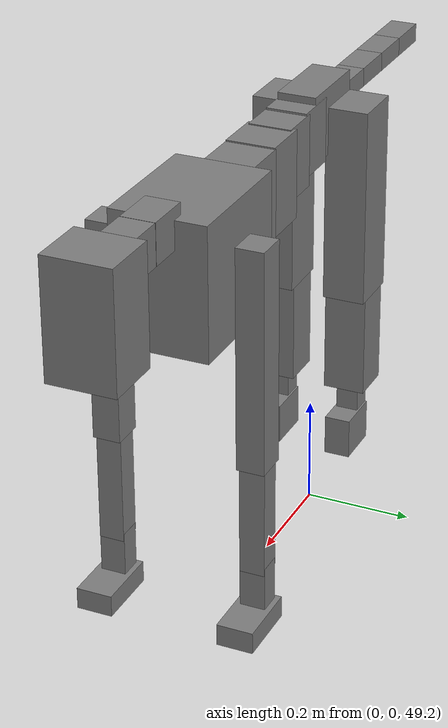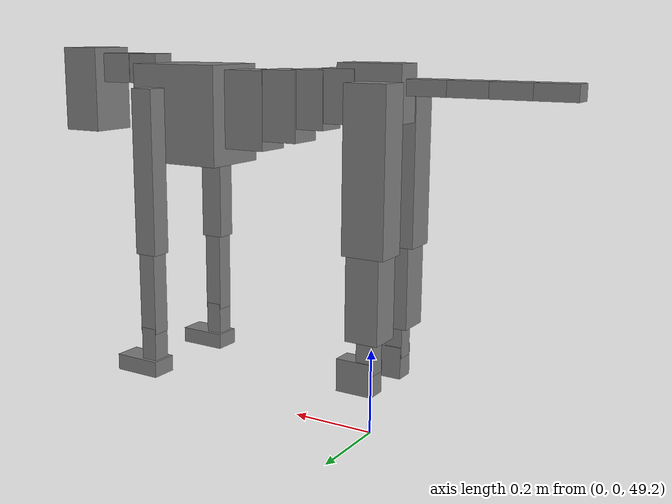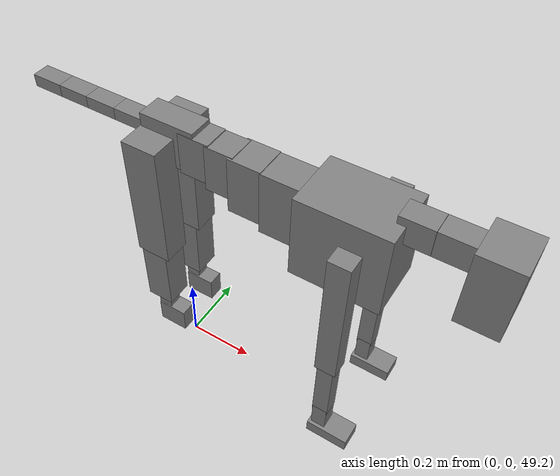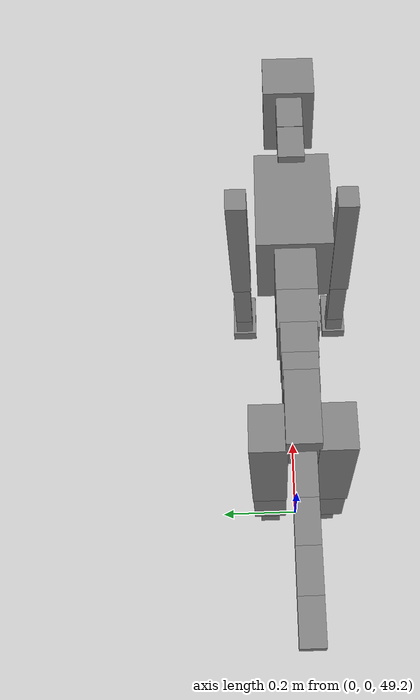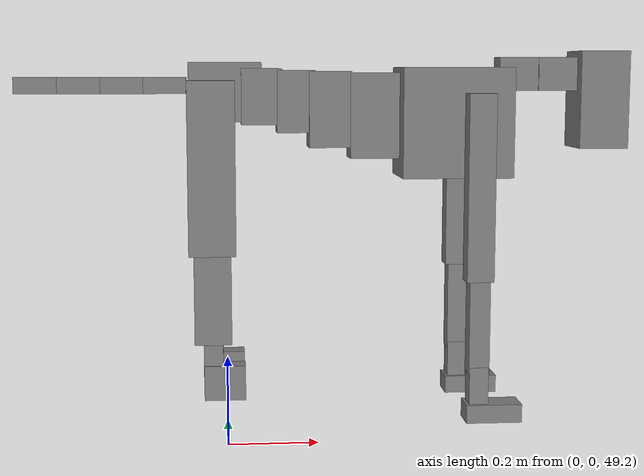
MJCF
<mujoco model="dog">

    <default>
        <joint armature="0.02" stiffness="1" damping="0.2" limited="true"/>
        <geom condim="3" friction="1 0.05 0.05" margin="0.01"/>
        <motor ctrllimited="true" ctrlrange="-1.0 1.0" forcelimited="true" gear="50"/>
    </default>

    <compiler inertiafromgeom="true" angle="radian"/>

    <option timestep="0.016" iterations="50" tolerance="1e-10" solver="Newton" jacobian="dense" cone="pyramidal"/>

    <size nconmax="20000" njmax="60000" nstack="5000000"/>
    <visual>
        <map force="0.1" zfar="30"/>
        <rgba haze="0.15 0.25 0.35 1"/>
        <quality shadowsize="2048"/>
        <global offwidth="800" offheight="800"/>
    </visual>

    <asset>
        <texture type="skybox" builtin="gradient" rgb1="0.3 0.5 0.7" rgb2="0 0 0" width="512" height="512"/>
        <texture name="texplane" type="2d" builtin="checker" rgb1=".2 .3 .4" rgb2=".1 0.15 0.2" width="512" height="512"
                 mark="cross" markrgb=".8 .8 .8"/>
        <texture name="texgeom" type="cube" builtin="flat" mark="cross" width="127" height="1278" rgb1="0.8 0.6 0.4"
                 rgb2="0.8 0.6 0.4" markrgb="1 1 1" random="0.01"/>

        <material name="matplane" reflectance="0.3" texture="texplane" texrepeat="1 1" texuniform="true"/>
        <material name="matgeom" texture="texgeom" texuniform="true" rgba="0.8 0.6 .4 1"/>
    </asset>

    <worldbody>
        <geom name="floor" pos="0 0 0" size="0 0 .25" type="plane" material="matplane" condim="3"/>

        <light directional="false" diffuse=".2 .2 .2" specular="0 0 0" pos="0 0 5" dir="0 0 -1" castshadow="false"/>
        <light mode="targetbodycom" target="torso" directional="false" diffuse=".8 .8 .8" specular="0.3 0.3 0.3"
               pos="0 0 4.0" dir="0 0 -1"/>

        <body name="root" pos="0 0 50">
            <freejoint name="root_1"/>
            <geom type="box" pos="0 0 -0.02" size="0.0774  0.0358  0.063" density="2030"/>

            <body name="spine1" pos="0.054 0 0">
                <joint name="spine1_y" axis="0 1 0" range="0 0.7" limited="true"/>
                <geom type="box" pos="0.02375 0 -0.03" size="0.04375  0.0375  0.05985" density="2030"/>

                <body name="spine2" pos="0.0612 0 0">
                    <joint name="spine2_y" axis="0 1 0" range="-0.15 0.15" limited="true"/>
                    <geom type="box" pos="0.03555  0  -0.04" size="0.04055  0.039  0.06615" density="2030"/>

                    <body name="spine3" pos="0.0730 0 0">
                        <joint name="spine3_y" axis="0 1 0" range="-0.15 0.15" limited="true"/>
                        <geom type="box" pos="0.03555  0  -0.057" size="0.04555  0.0445  0.081" density="2030"/>

                        <body name="spine4" pos="0.0780 0 0">
                            <joint name="spine4_y" axis="0 1 0" range="-0.15 0.15" limited="true"/>
                            <geom type="box" pos="0.05265  0  -0.07" size="0.05265  0.045  0.09135" density="2030"/>

                            <body name="torso" pos="0.1082 0 0">
                                <joint name="torso_y" axis="0 1 0" range="-0.15 0.15" limited="true"/>
                                <geom type="box" pos="0.11925  0  -0.085" size="0.11925  0.085  0.11745"
                                      density="2030"/>

                                <body name="neck1" pos="0.2160  0   0.0180">
                                    <joint name="neck1_y" axis="0 1 0" range="-1.2  -1" limited="true"/>
                                    <geom type="box" pos="0.0423  0  0" size="0.0423  0.03  0.036" density="2325"/>

                                    <body name="neck2" pos="0.0853  0  0">
                                        <joint name="neck2_y" axis="0 1 0" range="0.1  0" limited="true"/>
                                        <geom type="box" pos="0.0423  0  0" size="0.0423  0.03  0.036" density="2325"/>

                                        <body name="head" pos="0.0853  0  0">
                                            <joint name="head_y" axis="0 1 0" range="-0.3  -0.2" limited="true"/>
                                            <geom type="box" pos="0.0531  0  -0.055" size="0.0531  0.06  0.1044"
                                                  density="4030"/>

                                        </body>
                                    </body>
                                </body>

                                <body name="front_shoulder" pos="0.156  0   -0.0480">
                                    <joint name="front_shoulder_y" axis="0 1 0" range="-1 1.5" limited="true"/>
                                    <geom type="box" pos="0 0.13 -0.1705" size="0.0287  0.0246  0.1971" density="1158"/>
                                    <geom type="box" pos="0 -0.13 -0.1705" size="0.0287  0.0246  0.1971"
                                          density="1158"/>

                                    <body name="front_elbow" pos="0  0  -0.3409">
                                        <joint name="front_elbow_y" axis="0 1 0" range="-2 0" limited="true"/>
                                        <geom type="box" pos="0 0.13 -0.1114" size="0.0219  0.0224  0.1114"
                                              density="1081"/>
                                        <geom type="box" pos="0 -0.13 -0.1114" size="0.0219  0.0224  0.1114"
                                              density="1081"/>

                                        <body name="front_wrist" pos="0  0  -0.2229">
                                            <joint name="front_wrist_y" axis="0 1 0" range="-0.2 0" limited="true"/>
                                            <geom type="box" pos="0 0.13 -0.0406" size="0.0204  0.0227  0.0537"
                                                  density="1664"/>
                                            <geom type="box" pos="0 -0.13 -0.0406" size="0.0204  0.0227  0.0537"
                                                  density="1664"/>

                                            <body name="front_finger_end" pos="0  0  -0.0811">
                                                <joint name="front_finger_y" axis="0 1 0" range="-0.4 1"
                                                       limited="true"/>
                                                <geom type="box" pos="0.0324  0.13  -0.0045"
                                                      size="0.0593  0.0324  0.0195" density="1515"/>
                                                <geom type="box" pos="0.0324  -0.13  -0.0045"
                                                      size="0.0593  0.0324  0.0195" density="1515"/>

                                            </body>

                                        </body>
                                    </body>
                                </body>

                            </body>
                        </body>
                    </body>
                </body>
            </body>

            <body name="back_hip" pos="-0.03 0 -0.018">
                <joint name="back_hip_y" axis="0 1 0" range="-1.5 0.3" limited="true"/>
                <geom type="box" pos="0 0.07 -0.1604" size="0.0498  0.0391  0.1832" density="1154"/>
                <geom type="box" pos="0 -0.07 -0.1604" size="0.0498  0.0391  0.1832" density="1154"/>

                <body name="back_knee" pos="0  0  -0.3208">
                    <joint name="back_knee_y" axis="0 1 0" range="0 2.8" limited="true"/>
                    <geom type="box" pos="0 0.07 -0.0978" size="0.0392  0.0386  0.1134" density="1227"/>
                    <geom type="box" pos="0 -0.07 -0.0978" size="0.0392  0.0386  0.1134" density="1227"/>

                    <body name="back_ankle" pos="0  0  -0.1957">
                        <joint name="back_ankle_y" axis="0 1 0" range="-2.2 0" limited="true"/>
                        <geom type="box" pos="0 0.07 -0.0398" size="0.0205  0.0205  0.0510" density="1284"/>
                        <geom type="box" pos="0 -0.07 -0.0398" size="0.0205  0.0205  0.0510" density="1284"/>

                        <body name="back_toe_end" pos="0  0  -0.0795">
                            <joint name="back_toe_y" axis="0 1 0" range="-0.4 1" limited="true"/>
                            <geom type="box" pos="0.0239  0.07  -0.0224" size="0.0438  0.0239  0.0374" density="1515"/>
                            <geom type="box" pos="0.0239  -0.07  -0.0224" size="0.0438  0.0239  0.0374" density="1515"/>

                        </body>
                    </body>
                </body>
            </body>

            <body name="tail1" pos="-0.074 0 -0.006">
                <joint name="tail1_y" axis="0 1 0" range="-0.2 0.2" limited="true"/>
                <geom type="box" pos="-0.0536  0  0" size="0.045  0.025  0.0175" density="1587"/>

                <body name="tail2" pos="-0.09 0 0">
                    <joint name="tail2_y" axis="0 1 0" range="-0.2 0.2" limited="true"/>
                    <geom type="box" pos="-0.0536  0  0" size="0.045  0.025  0.0175" density="1587"/>

                    <body name="tail3" pos="-0.09 0 0">
                        <joint name="tail3_y" axis="0 1 0" range="-0.2 0.2" limited="true"/>
                        <geom type="box" pos="-0.0536  0  0" size="0.045  0.025  0.0175" density="1587"/>

                        <body name="tail4" pos="-0.09 0 0">
                            <joint name="tail4_y" axis="0 1 0" range="-0.2 0.2" limited="true"/>
                            <geom type="box" pos="-0.0536  0  0" size="0.045  0.025  0.0175" density="1587"/>

                        </body>
                    </body>
                </body>
            </body>
        </body>
    </worldbody>

    <actuator>
        <motor joint="spine1_y" forcerange="-150 150     "/>
        <motor joint="spine2_y" forcerange="-150 150     "/>
        <motor joint="spine3_y" forcerange="-150 150     "/>
        <motor joint="spine4_y" forcerange="-150 150     "/>
        <motor joint="torso_y" forcerange="-150 150     "/>
        <motor joint="neck1_y" forcerange="-100 100       "/>
        <motor joint="neck2_y" forcerange="-100 100       "/>
        <motor joint="head_y" forcerange="-150 150       "/>
        <motor joint="front_shoulder_y" forcerange="-155.88 107.89"/>
        <motor joint="front_elbow_y" forcerange="-110.20 152.85"/>
        <motor joint="front_wrist_y" forcerange="-55.08 126.34"/>
        <motor joint="front_finger_y" forcerange="-69.36 63.18"/>
        <motor joint="back_hip_y" forcerange="-353.52 367.64"/>
        <motor joint="back_knee_y" forcerange="-374.58 387.05"/>
        <motor joint="back_angle_y" forcerange="-98.14 130.65"/>
        <motor joint="back_toe_y" forcerange="-56.10 55.16"/>
        <motor joint="tail1_y" forcerange="-50 50     "/>
        <motor joint="tail2_y" forcerange="-50 50     "/>
        <motor joint="tail3_y" forcerange="-50 50     "/>
        <motor joint="tail4_y" forcerange="-50 50     "/>
    </actuator>
</mujoco>
